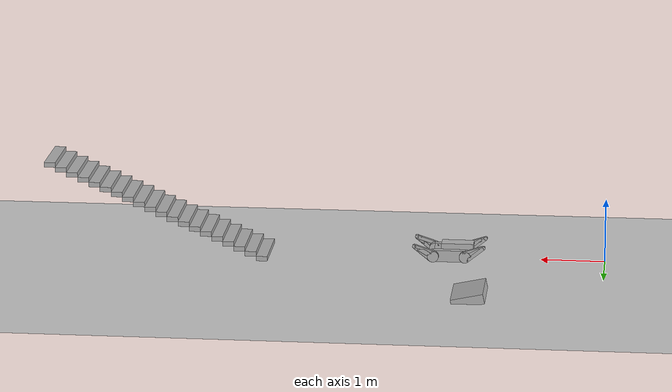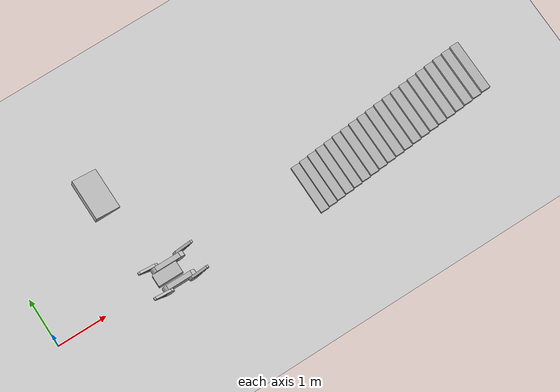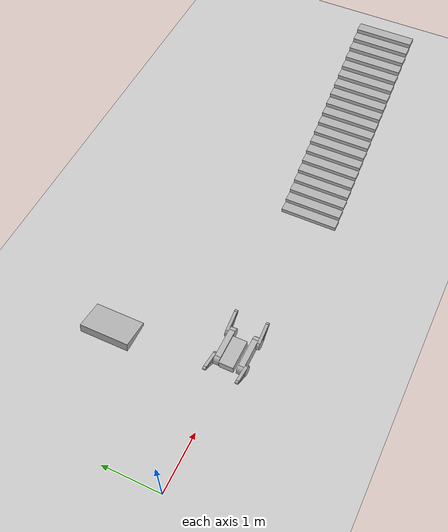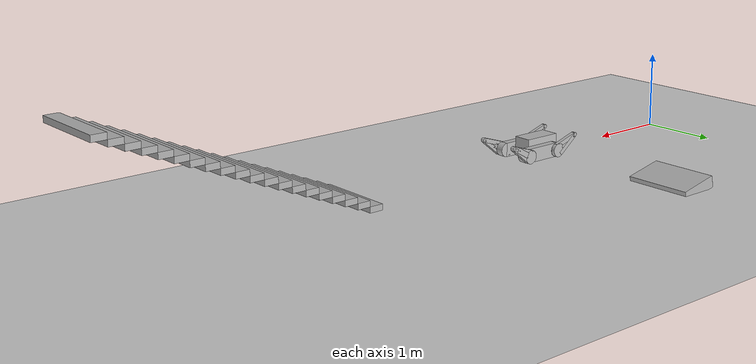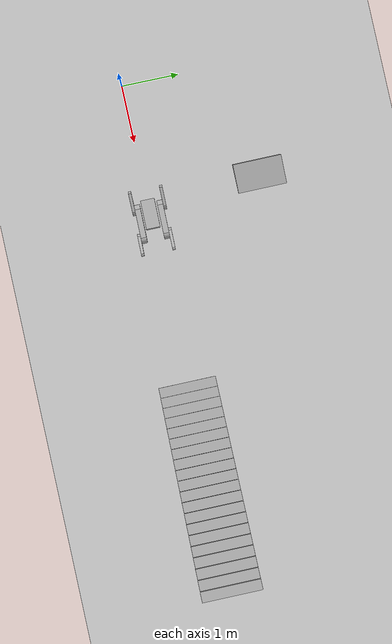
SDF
<sdf version="1.10">
 <world name="default">
  <physics name="4ms" type="ignored">
   <max_step_size>0.0040000000000000001</max_step_size>
   <real_time_factor>1</real_time_factor>
   <real_time_update_rate>1000</real_time_update_rate>
  </physics>
  <plugin name="gz::sim::systems::Physics" filename="gz-sim-physics-system"/>
  <plugin name="gz::sim::systems::UserCommands" filename="gz-sim-user-commands-system"/>
  <plugin name="gz::sim::systems::SceneBroadcaster" filename="gz-sim-scene-broadcaster-system"/>
  <scene>
   <ambient>1 1 1 1</ambient>
   <background>0.800000012 0.800000012 0.800000012 1</background>
   <shadows>true</shadows>
  </scene>
  <gravity>0 0 -9.8000000000000007</gravity>
  <magnetic_field>6.0000000000000002e-06 2.3e-05 -4.1999999999999998e-05</magnetic_field>
  <atmosphere type="adiabatic"/>
  <model name="ground_plane">
   <static>true</static>
   <link name="link">
    <collision name="collision">
     <geometry><plane><normal>0 0 1</normal><size>100 100</size></plane></geometry>
    </collision>
    <visual name="visual">
     <geometry><plane><normal>0 0 1</normal><size>100 100</size></plane></geometry>
     <material>
      <ambient>0.800000012 0.800000012 0.800000012 1</ambient>
      <diffuse>0.800000012 0.800000012 0.800000012 1</diffuse>
      <specular>0.800000012 0.800000012 0.800000012 1</specular>
     </material>
    </visual>
    <inertial>
     <mass>1</mass>
     <inertia><ixx>1</ixx><ixy>0</ixy><ixz>0</ixz><iyy>1</iyy><iyz>0</iyz><izz>1</izz></inertia>
    </inertial>
   </link>
  </model>
  <model name="simple_tracked">
   <pose>2.4212790601763632 0.0088234418596447404 0.071920416213215738 -4.4765656220572496e-08 -1.6720833791462506e-06 -0.0062734254561299134</pose>
   <link name="base_link">
    <inertial>
     <pose>-0.122 0 0.11799999999999999 1.5708 0 0</pose>
     <mass>13.140000000000001</mass>
     <inertia>
      <ixx>0.10019</ixx>
      <ixy>0</ixy>
      <ixz>0</ixz>
      <iyy>0.34504299999999999</iyy>
      <iyz>0</iyz>
      <izz>0.30204399999999998</izz>
     </inertia>
    </inertial>
    <collision name="base_link_collision">
     <pose>-0.122 0 0.11799999999999999 0 0 0</pose>
     <geometry><box><size>0.50017 0.24093000000000001 0.13900000000000001</size></box></geometry>
    </collision>
    <visual name="base_link_visual">
     <pose>-0.122 0 0.11799999999999999 0 0 0</pose>
     <geometry><box><size>0.50017 0.24093000000000001 0.13900000000000001</size></box></geometry>
    </visual>
   </link>
   <link name="left_track">
    <pose>0 0.19850000000000001 -1.3877787807814457e-17 -6.6174449004242214e-24 -3.2182495707141233e-23 -8.6736173798840355e-19</pose>
    <inertial>
     <pose>0 0 0.0141 0 0 0</pose>
     <mass>6.0599999999999996</mass>
     <inertia>
      <ixx>0.0027309999999999999</ixx>
      <ixy>0</ixy>
      <ixz>0</ixz>
      <iyy>0.032554</iyy>
      <iyz>1.5e-05</iyz>
      <izz>0.031391000000000002</izz>
     </inertia>
    </inertial>
    <collision name="left_track_collision">
     <pose>0 0 0.018550000000000001 1.5708 -5.5511151231257827e-17 1.5708</pose>
     <geometry><box><size>0.097280000000000005 0.18093999999999999 0.5</size></box></geometry>
     <surface>
      <friction><ode><mu>0.69999999999999996</mu><mu2>150</mu2><fdir1>0 1 0</fdir1></ode></friction>
     </surface>
    </collision>
    <collision name="left_track_collision_1">
     <pose>0.25 0 0.018550000000000001 1.5708 0 0</pose>
     <geometry>
      <cylinder><length>0.097280000000000005</length><radius>0.090469999999999995</radius></cylinder>
     </geometry>
     <surface>
      <friction><ode><mu>0.69999999999999996</mu><mu2>150</mu2><fdir1>0 1 0</fdir1></ode></friction>
     </surface>
    </collision>
    <collision name="left_track_collision_2">
     <pose>-0.25 0 0.018550000000000001 1.5708 0 0</pose>
     <geometry>
      <cylinder><length>0.097280000000000005</length><radius>0.090469999999999995</radius></cylinder>
     </geometry>
     <surface>
      <friction><ode><mu>0.69999999999999996</mu><mu2>150</mu2><fdir1>0 1 0</fdir1></ode></friction>
     </surface>
    </collision>
    <visual name="left_track_visual">
     <pose>0 0 0.018550000000000001 1.5708 -5.5511151231257827e-17 1.5708</pose>
     <geometry><box><size>0.097280000000000005 0.18093999999999999 0.5</size></box></geometry>
    </visual>
    <visual name="left_track_visual_1">
     <pose>0.25 0 0.018550000000000001 1.5708 0 0</pose>
     <geometry>
      <cylinder><length>0.097280000000000005</length><radius>0.090469999999999995</radius></cylinder>
     </geometry>
    </visual>
    <visual name="left_track_visual_2">
     <pose>-0.25 0 0.018550000000000001 1.5708 0 0</pose>
     <geometry>
      <cylinder><length>0.097280000000000005</length><radius>0.090469999999999995</radius></cylinder>
     </geometry>
    </visual>
   </link>
   <joint name="left_track_j" type="fixed"><child>left_track</child><parent>base_link</parent></joint>
   <link name="right_track">
    <pose>-8.8817841970012523e-16 -0.19850000000000001 -1.3877787807814457e-17 -6.6174449004242214e-24 -3.2182495707141233e-23 -8.6736173798840355e-19</pose>
    <inertial>
     <pose>0 0 0.0141 0 0 0</pose>
     <mass>6.0599999999999996</mass>
     <inertia>
      <ixx>0.0027309999999999999</ixx>
      <ixy>0</ixy>
      <ixz>0</ixz>
      <iyy>0.032554</iyy>
      <iyz>1.5e-05</iyz>
      <izz>0.031391000000000002</izz>
     </inertia>
    </inertial>
    <collision name="right_track_collision">
     <pose>0 0 0.018550000000000001 1.5708 -5.5511151231257827e-17 1.5708</pose>
     <geometry><box><size>0.097280000000000005 0.18093999999999999 0.5</size></box></geometry>
     <surface>
      <friction><ode><mu>0.69999999999999996</mu><mu2>150</mu2><fdir1>0 1 0</fdir1></ode></friction>
     </surface>
    </collision>
    <collision name="right_track_collision_1">
     <pose>0.25 0 0.018550000000000001 1.5708 0 0</pose>
     <geometry>
      <cylinder><length>0.097280000000000005</length><radius>0.090469999999999995</radius></cylinder>
     </geometry>
     <surface>
      <friction><ode><mu>0.69999999999999996</mu><mu2>150</mu2><fdir1>0 1 0</fdir1></ode></friction>
     </surface>
    </collision>
    <collision name="right_track_collision_2">
     <pose>-0.25 0 0.018550000000000001 1.5708 0 0</pose>
     <geometry>
      <cylinder><length>0.097280000000000005</length><radius>0.090469999999999995</radius></cylinder>
     </geometry>
     <surface>
      <friction><ode><mu>0.69999999999999996</mu><mu2>150</mu2><fdir1>0 1 0</fdir1></ode></friction>
     </surface>
    </collision>
    <visual name="right_track_visual">
     <pose>0 0 0.018550000000000001 1.5708 -5.5511151231257827e-17 1.5708</pose>
     <geometry><box><size>0.097280000000000005 0.18093999999999999 0.5</size></box></geometry>
    </visual>
    <visual name="right_track_visual_1">
     <pose>0.25 0 0.018550000000000001 1.5708 0 0</pose>
     <geometry>
      <cylinder><length>0.097280000000000005</length><radius>0.090469999999999995</radius></cylinder>
     </geometry>
    </visual>
    <visual name="right_track_visual_2">
     <pose>-0.25 0 0.018550000000000001 1.5708 0 0</pose>
     <geometry>
      <cylinder><length>0.097280000000000005</length><radius>0.090469999999999995</radius></cylinder>
     </geometry>
    </visual>
   </link>
   <joint name="right_track_j" type="fixed"><child>right_track</child><parent>base_link</parent></joint>
   <link name="front_left_flipper">
    <pose>0.24999994858526753 0.2719999948407883 0.019499993412040811 1.3959020833992615e-08 -0.49651992800560996 1.935706113526475e-07</pose>
    <inertial>
     <pose>0.080000000000000002 0 0 0 0 0</pose>
     <mass>0.75</mass>
     <inertia>
      <ixx>0.0017491</ixx>
      <ixy>2.8512e-07</ixy>
      <ixz>0.0018277</ixz>
      <iyy>0.012277</iyy>
      <iyz>-3.6287999999999998e-07</iyz>
      <izz>0.010940999999999999</izz>
     </inertia>
    </inertial>
    <collision name="front_left_flipper_collision_large_wheel_collision">
     <pose>0 0 0 1.5708 0 0</pose>
     <geometry><cylinder><length>0.04981</length><radius>0.088999999999999996</radius></cylinder></geometry>
     <surface>
      <friction><ode><mu>0.69999999999999996</mu><mu2>150</mu2><fdir1>0 1 0</fdir1></ode></friction>
     </surface>
     <max_contacts>20</max_contacts>
    </collision>
    <collision name="front_left_flipper_collision_small_wheel_collision_1">
     <pose>0.33000000000000002 0 0 1.5708 0 0</pose>
     <geometry><cylinder><length>0.04981</length><radius>0.029000000000000001</radius></cylinder></geometry>
     <surface>
      <friction><ode><mu>0.69999999999999996</mu><mu2>150</mu2><fdir1>0 1 0</fdir1></ode></friction>
     </surface>
     <max_contacts>20</max_contacts>
    </collision>
    <collision name="front_left_flipper_collision_top_bar_collision_2">
     <pose>0.16500000000000001 0 0.032500000000000001 0 0.18416199999999999 0</pose>
     <geometry><box><size>0.33000000000000002 0.04981 0.055</size></box></geometry>
     <surface>
      <friction><ode><mu>0.69999999999999996</mu><mu2>150</mu2><fdir1>0 1 0</fdir1></ode></friction>
     </surface>
     <max_contacts>20</max_contacts>
    </collision>
    <collision name="front_left_flipper_collision_bottom_bar_collision_3">
     <pose>0.16500000000000001 0 -0.032500000000000001 0 -0.18416199999999999 0</pose>
     <geometry><box><size>0.33000000000000002 0.04981 0.055</size></box></geometry>
     <surface>
      <friction><ode><mu>0.69999999999999996</mu><mu2>150</mu2><fdir1>0 1 0</fdir1></ode></friction>
     </surface>
     <max_contacts>20</max_contacts>
    </collision>
    <collision name="front_left_flipper_collision_middle_bar_collision_4">
     <pose>0.16600000000000001 0 0.0040000000000000001 0 -0.02 0</pose>
     <geometry><box><size>0.20000000000000001 0.04981 0.070000000000000007</size></box></geometry>
     <surface>
      <friction><ode><mu>0.69999999999999996</mu><mu2>150</mu2><fdir1>0 1 0</fdir1></ode></friction>
     </surface>
     <max_contacts>20</max_contacts>
    </collision>
    <visual name="front_left_flipper_visual_large_wheel_visual">
     <pose>0 0 0 1.5708 0 0</pose>
     <geometry><cylinder><length>0.04981</length><radius>0.088999999999999996</radius></cylinder></geometry>
    </visual>
    <visual name="front_left_flipper_visual_small_wheel_visual_1">
     <pose>0.33000000000000002 0 0 1.5708 0 0</pose>
     <geometry><cylinder><length>0.04981</length><radius>0.029000000000000001</radius></cylinder></geometry>
    </visual>
    <visual name="front_left_flipper_visual_top_bar_visual_2">
     <pose>0.16500000000000001 0 0.032500000000000001 0 0.18416199999999999 0</pose>
     <geometry><box><size>0.33000000000000002 0.04981 0.055</size></box></geometry>
    </visual>
    <visual name="front_left_flipper_visual_bottom_bar_visual_3">
     <pose>0.16500000000000001 0 -0.032500000000000001 0 -0.18416199999999999 0</pose>
     <geometry><box><size>0.33000000000000002 0.04981 0.055</size></box></geometry>
    </visual>
    <visual name="front_left_flipper_visual_middle_bar_visual_4">
     <pose>0.16600000000000001 0 0.0040000000000000001 0 -0.02 0</pose>
     <geometry><box><size>0.20000000000000001 0.04981 0.070000000000000007</size></box></geometry>
    </visual>
    <self_collide>true</self_collide>
   </link>
   <joint name="front_left_flipper_j" type="revolute">
    <child>front_left_flipper</child>
    <parent>left_track</parent>
    <axis>
     <xyz>0 1 0</xyz>
     <limit>
      <lower>0</lower>
      <upper>0</upper>
      <effort>inf</effort>
      <velocity>inf</velocity>
      <stiffness>100000000</stiffness>
      <dissipation>1</dissipation>
     </limit>
     <dynamics>
      <spring_reference>0</spring_reference>
      <spring_stiffness>0</spring_stiffness>
      <damping>0</damping>
      <friction>0</friction>
     </dynamics>
    </axis>
    <physics>
     <ode>
      <implicit_spring_damper>true</implicit_spring_damper>
      <cfm_damping>true</cfm_damping>
      <limit><cfm>0</cfm><erp>0.20000000000000001</erp></limit>
     </ode>
    </physics>
    <pose>0 5.5511199999999995e-17 -4.1633400000000002e-17 0 0 0</pose>
   </joint>
   <link name="rear_left_flipper">
    <pose>-0.24999999999999956 0.27199999999999996 0.019500000000000045 3.1415899999999999 -0.499999999999307 3.1415899999999999</pose>
    <inertial>
     <pose>0.080000000000000002 0 0 0 0 0</pose>
     <mass>0.75</mass>
     <inertia>
      <ixx>0.0017491</ixx>
      <ixy>2.8512e-07</ixy>
      <ixz>0.0018277</ixz>
      <iyy>0.012277</iyy>
      <iyz>-3.6287999999999998e-07</iyz>
      <izz>0.010940999999999999</izz>
     </inertia>
    </inertial>
    <collision name="rear_left_flipper_collision_large_wheel_collision">
     <pose>0 0 0 1.5708 0 0</pose>
     <geometry><cylinder><length>0.04981</length><radius>0.088999999999999996</radius></cylinder></geometry>
     <surface>
      <friction><ode><mu>0.69999999999999996</mu><mu2>150</mu2><fdir1>0 1 0</fdir1></ode></friction>
     </surface>
     <max_contacts>20</max_contacts>
    </collision>
    <collision name="rear_left_flipper_collision_small_wheel_collision_1">
     <pose>0.33000000000000002 0 0 1.5708 0 0</pose>
     <geometry><cylinder><length>0.04981</length><radius>0.029000000000000001</radius></cylinder></geometry>
     <surface>
      <friction><ode><mu>0.69999999999999996</mu><mu2>150</mu2><fdir1>0 1 0</fdir1></ode></friction>
     </surface>
     <max_contacts>20</max_contacts>
    </collision>
    <collision name="rear_left_flipper_collision_top_bar_collision_2">
     <pose>0.16500000000000001 0 0.032500000000000001 0 0.18416199999999999 0</pose>
     <geometry><box><size>0.33000000000000002 0.04981 0.055</size></box></geometry>
     <surface>
      <friction><ode><mu>0.69999999999999996</mu><mu2>150</mu2><fdir1>0 1 0</fdir1></ode></friction>
     </surface>
     <max_contacts>20</max_contacts>
    </collision>
    <collision name="rear_left_flipper_collision_bottom_bar_collision_3">
     <pose>0.16500000000000001 0 -0.032500000000000001 0 -0.18416199999999999 0</pose>
     <geometry><box><size>0.33000000000000002 0.04981 0.055</size></box></geometry>
     <surface>
      <friction><ode><mu>0.69999999999999996</mu><mu2>150</mu2><fdir1>0 1 0</fdir1></ode></friction>
     </surface>
     <max_contacts>20</max_contacts>
    </collision>
    <collision name="rear_left_flipper_collision_middle_bar_collision_4">
     <pose>0.16600000000000001 0 0.0040000000000000001 0 -0.02 0</pose>
     <geometry><box><size>0.20000000000000001 0.04981 0.070000000000000007</size></box></geometry>
     <surface>
      <friction><ode><mu>0.69999999999999996</mu><mu2>150</mu2><fdir1>0 1 0</fdir1></ode></friction>
     </surface>
     <max_contacts>20</max_contacts>
    </collision>
    <visual name="rear_left_flipper_visual_large_wheel_visual">
     <pose>0 0 0 1.5708 0 0</pose>
     <geometry><cylinder><length>0.04981</length><radius>0.088999999999999996</radius></cylinder></geometry>
    </visual>
    <visual name="rear_left_flipper_visual_small_wheel_visual_1">
     <pose>0.33000000000000002 0 0 1.5708 0 0</pose>
     <geometry><cylinder><length>0.04981</length><radius>0.029000000000000001</radius></cylinder></geometry>
    </visual>
    <visual name="rear_left_flipper_visual_top_bar_visual_2">
     <pose>0.16500000000000001 0 0.032500000000000001 0 0.18416199999999999 0</pose>
     <geometry><box><size>0.33000000000000002 0.04981 0.055</size></box></geometry>
    </visual>
    <visual name="rear_left_flipper_visual_bottom_bar_visual_3">
     <pose>0.16500000000000001 0 -0.032500000000000001 0 -0.18416199999999999 0</pose>
     <geometry><box><size>0.33000000000000002 0.04981 0.055</size></box></geometry>
    </visual>
    <visual name="rear_left_flipper_visual_middle_bar_visual_4">
     <pose>0.16600000000000001 0 0.0040000000000000001 0 -0.02 0</pose>
     <geometry><box><size>0.20000000000000001 0.04981 0.070000000000000007</size></box></geometry>
    </visual>
    <self_collide>true</self_collide>
   </link>
   <joint name="rear_left_flipper_j" type="revolute">
    <child>rear_left_flipper</child>
    <parent>left_track</parent>
    <axis>
     <xyz>2.3287441290566332e-06 0.99999999998958267 3.9257885092516563e-06</xyz>
     <limit>
      <lower>0</lower>
      <upper>0</upper>
      <effort>inf</effort>
      <velocity>inf</velocity>
      <stiffness>100000000</stiffness>
      <dissipation>1</dissipation>
     </limit>
     <dynamics>
      <spring_reference>0</spring_reference>
      <spring_stiffness>0</spring_stiffness>
      <damping>0</damping>
      <friction>0</friction>
     </dynamics>
    </axis>
    <physics>
     <ode>
      <implicit_spring_damper>true</implicit_spring_damper>
      <cfm_damping>true</cfm_damping>
      <limit><cfm>0</cfm><erp>0.20000000000000001</erp></limit>
     </ode>
    </physics>
    <pose>1.6653299999999999e-16 0 1.3877799999999999e-17 3.2731500000000002e-40 6.1828099999999997e-18 1.05879e-22</pose>
   </joint>
   <link name="front_right_flipper">
    <pose>0.24999999999999911 -0.27199999999999996 0.019500000000000017 3.1415899999999999 0.49999999999963862 3.1415899999999999</pose>
    <inertial>
     <pose>-0.080000000000000002 0 0 0 0 0</pose>
     <mass>0.75</mass>
     <inertia>
      <ixx>0.0017491</ixx>
      <ixy>2.8512e-07</ixy>
      <ixz>0.0018277</ixz>
      <iyy>0.012277</iyy>
      <iyz>-3.6287999999999998e-07</iyz>
      <izz>0.010940999999999999</izz>
     </inertia>
    </inertial>
    <collision name="front_right_flipper_collision_large_wheel_collision">
     <pose>0 0 0 1.5708 0 0</pose>
     <geometry><cylinder><length>0.04981</length><radius>0.088999999999999996</radius></cylinder></geometry>
     <surface>
      <friction><ode><mu>0.69999999999999996</mu><mu2>150</mu2><fdir1>0 1 0</fdir1></ode></friction>
     </surface>
     <max_contacts>20</max_contacts>
    </collision>
    <collision name="front_right_flipper_collision_small_wheel_collision_1">
     <pose>-0.33000000000000002 0 0 1.5708 0 0</pose>
     <geometry><cylinder><length>0.04981</length><radius>0.029000000000000001</radius></cylinder></geometry>
     <surface>
      <friction><ode><mu>0.69999999999999996</mu><mu2>150</mu2><fdir1>0 1 0</fdir1></ode></friction>
     </surface>
     <max_contacts>20</max_contacts>
    </collision>
    <collision name="front_right_flipper_collision_top_bar_collision_2">
     <pose>-0.16500000000000001 0 0.032500000000000001 0 0.18416199999999999 -3.1415899999999999</pose>
     <geometry><box><size>0.33000000000000002 0.04981 0.055</size></box></geometry>
     <surface>
      <friction><ode><mu>0.69999999999999996</mu><mu2>150</mu2><fdir1>0 1 0</fdir1></ode></friction>
     </surface>
     <max_contacts>20</max_contacts>
    </collision>
    <collision name="front_right_flipper_collision_bottom_bar_collision_3">
     <pose>-0.16500000000000001 0 -0.032500000000000001 0 -0.18416199999999999 -3.1415899999999999</pose>
     <geometry><box><size>0.33000000000000002 0.04981 0.055</size></box></geometry>
     <surface>
      <friction><ode><mu>0.69999999999999996</mu><mu2>150</mu2><fdir1>0 1 0</fdir1></ode></friction>
     </surface>
     <max_contacts>20</max_contacts>
    </collision>
    <collision name="front_right_flipper_collision_middle_bar_collision_4">
     <pose>-0.16600000000000001 0 0.0040000000000000001 -3.3093843050108442e-24 -0.020000000000000004 -3.1415899999999999</pose>
     <geometry><box><size>0.20000000000000001 0.04981 0.070000000000000007</size></box></geometry>
     <surface>
      <friction><ode><mu>0.69999999999999996</mu><mu2>150</mu2><fdir1>0 1 0</fdir1></ode></friction>
     </surface>
     <max_contacts>20</max_contacts>
    </collision>
    <visual name="front_right_flipper_visual_large_wheel_visual">
     <pose>0 0 0 1.5708 0 0</pose>
     <geometry><cylinder><length>0.04981</length><radius>0.088999999999999996</radius></cylinder></geometry>
    </visual>
    <visual name="front_right_flipper_visual_small_wheel_visual_1">
     <pose>-0.33000000000000002 0 0 1.5708 0 0</pose>
     <geometry><cylinder><length>0.04981</length><radius>0.029000000000000001</radius></cylinder></geometry>
    </visual>
    <visual name="front_right_flipper_visual_top_bar_visual_2">
     <pose>-0.16500000000000001 0 0.032500000000000001 0 0.18416199999999999 -3.1415899999999999</pose>
     <geometry><box><size>0.33000000000000002 0.04981 0.055</size></box></geometry>
    </visual>
    <visual name="front_right_flipper_visual_bottom_bar_visual_3">
     <pose>-0.16500000000000001 0 -0.032500000000000001 0 -0.18416199999999999 -3.1415899999999999</pose>
     <geometry><box><size>0.33000000000000002 0.04981 0.055</size></box></geometry>
    </visual>
    <visual name="front_right_flipper_visual_middle_bar_visual_4">
     <pose>-0.16600000000000001 0 0.0040000000000000001 -3.3093843050108442e-24 -0.020000000000000004 -3.1415899999999999</pose>
     <geometry><box><size>0.20000000000000001 0.04981 0.070000000000000007</size></box></geometry>
    </visual>
    <self_collide>true</self_collide>
   </link>
   <joint name="front_right_flipper_j" type="revolute">
    <child>front_right_flipper</child>
    <parent>right_track</parent>
    <axis>
     <xyz>2.3287441290566328e-06 0.99999999999633438 1.381391077435118e-06</xyz>
     <limit>
      <lower>0</lower>
      <upper>0</upper>
      <effort>inf</effort>
      <velocity>inf</velocity>
      <stiffness>100000000</stiffness>
      <dissipation>1</dissipation>
     </limit>
     <dynamics>
      <spring_reference>0</spring_reference>
      <spring_stiffness>0</spring_stiffness>
      <damping>0</damping>
      <friction>0</friction>
     </dynamics>
    </axis>
    <physics>
     <ode>
      <implicit_spring_damper>true</implicit_spring_damper>
      <cfm_damping>true</cfm_damping>
      <limit><cfm>0</cfm><erp>0.20000000000000001</erp></limit>
     </ode>
    </physics>
    <pose>-1.38778e-16 -5.5511199999999995e-17 2.7755599999999997e-17 2.11758e-22 -1.09517e-17 -1.15955e-39</pose>
   </joint>
   <link name="rear_right_flipper">
    <pose>-0.24999994249490598 -0.272000105269326 0.019499998205294661 1.3956252588314928e-08 0.49615370147433774 2.0686407642123534e-07</pose>
    <inertial>
     <pose>-0.080000000000000002 0 0 0 0 0</pose>
     <mass>0.75</mass>
     <inertia>
      <ixx>0.0017491</ixx>
      <ixy>2.8512e-07</ixy>
      <ixz>0.0018277</ixz>
      <iyy>0.012277</iyy>
      <iyz>-3.6287999999999998e-07</iyz>
      <izz>0.010940999999999999</izz>
     </inertia>
    </inertial>
    <collision name="rear_right_flipper_collision_large_wheel_collision">
     <pose>0 0 0 1.5708 0 0</pose>
     <geometry><cylinder><length>0.04981</length><radius>0.088999999999999996</radius></cylinder></geometry>
     <surface>
      <friction><ode><mu>0.69999999999999996</mu><mu2>150</mu2><fdir1>0 1 0</fdir1></ode></friction>
     </surface>
     <max_contacts>20</max_contacts>
    </collision>
    <collision name="rear_right_flipper_collision_small_wheel_collision_1">
     <pose>-0.33000000000000002 0 0 1.5708 0 0</pose>
     <geometry><cylinder><length>0.04981</length><radius>0.029000000000000001</radius></cylinder></geometry>
     <surface>
      <friction><ode><mu>0.69999999999999996</mu><mu2>150</mu2><fdir1>0 1 0</fdir1></ode></friction>
     </surface>
     <max_contacts>20</max_contacts>
    </collision>
    <collision name="rear_right_flipper_collision_top_bar_collision_2">
     <pose>-0.16500000000000001 0 0.032500000000000001 0 0.18416199999999999 -3.1415899999999999</pose>
     <geometry><box><size>0.33000000000000002 0.04981 0.055</size></box></geometry>
     <surface>
      <friction><ode><mu>0.69999999999999996</mu><mu2>150</mu2><fdir1>0 1 0</fdir1></ode></friction>
     </surface>
     <max_contacts>20</max_contacts>
    </collision>
    <collision name="rear_right_flipper_collision_bottom_bar_collision_3">
     <pose>-0.16500000000000001 0 -0.032500000000000001 0 -0.18416199999999999 -3.1415899999999999</pose>
     <geometry><box><size>0.33000000000000002 0.04981 0.055</size></box></geometry>
     <surface>
      <friction><ode><mu>0.69999999999999996</mu><mu2>150</mu2><fdir1>0 1 0</fdir1></ode></friction>
     </surface>
     <max_contacts>20</max_contacts>
    </collision>
    <collision name="rear_right_flipper_collision_middle_bar_collision_4">
     <pose>-0.16600000000000001 0 0.0040000000000000001 -3.3093843050108442e-24 -0.020000000000000004 -3.1415899999999999</pose>
     <geometry><box><size>0.20000000000000001 0.04981 0.070000000000000007</size></box></geometry>
     <surface>
      <friction><ode><mu>0.69999999999999996</mu><mu2>150</mu2><fdir1>0 1 0</fdir1></ode></friction>
     </surface>
     <max_contacts>20</max_contacts>
    </collision>
    <visual name="rear_right_flipper_visual_large_wheel_visual">
     <pose>0 0 0 1.5708 0 0</pose>
     <geometry><cylinder><length>0.04981</length><radius>0.088999999999999996</radius></cylinder></geometry>
    </visual>
    <visual name="rear_right_flipper_visual_small_wheel_visual_1">
     <pose>-0.33000000000000002 0 0 1.5708 0 0</pose>
     <geometry><cylinder><length>0.04981</length><radius>0.029000000000000001</radius></cylinder></geometry>
    </visual>
    <visual name="rear_right_flipper_visual_top_bar_visual_2">
     <pose>-0.16500000000000001 0 0.032500000000000001 0 0.18416199999999999 -3.1415899999999999</pose>
     <geometry><box><size>0.33000000000000002 0.04981 0.055</size></box></geometry>
    </visual>
    <visual name="rear_right_flipper_visual_bottom_bar_visual_3">
     <pose>-0.16500000000000001 0 -0.032500000000000001 0 -0.18416199999999999 -3.1415899999999999</pose>
     <geometry><box><size>0.33000000000000002 0.04981 0.055</size></box></geometry>
    </visual>
    <visual name="rear_right_flipper_visual_middle_bar_visual_4">
     <pose>-0.16600000000000001 0 0.0040000000000000001 -3.3093843050108442e-24 -0.020000000000000004 -3.1415899999999999</pose>
     <geometry><box><size>0.20000000000000001 0.04981 0.070000000000000007</size></box></geometry>
    </visual>
    <self_collide>true</self_collide>
   </link>
   <joint name="rear_right_flipper_j" type="revolute">
    <child>rear_right_flipper</child>
    <parent>right_track</parent>
    <axis>
     <xyz>0 1 0</xyz>
     <limit>
      <lower>0</lower>
      <upper>0</upper>
      <effort>inf</effort>
      <velocity>inf</velocity>
      <stiffness>100000000</stiffness>
      <dissipation>1</dissipation>
     </limit>
     <dynamics>
      <spring_reference>0</spring_reference>
      <spring_stiffness>0</spring_stiffness>
      <damping>0</damping>
      <friction>0</friction>
     </dynamics>
    </axis>
    <physics>
     <ode>
      <implicit_spring_damper>true</implicit_spring_damper>
      <cfm_damping>true</cfm_damping>
      <limit><cfm>0</cfm><erp>0.20000000000000001</erp></limit>
     </ode>
    </physics>
    <pose>0 -5.5511199999999995e-17 -4.1633400000000002e-17 0 0 0</pose>
   </joint>
   <plugin name="gz::sim::systems::TrackedVehicle" filename="gz-sim-tracked-vehicle-system">
    <left_track><link>left_track</link></left_track>
    <left_track><link>front_left_flipper</link></left_track>
    <left_track><link>rear_left_flipper</link></left_track>
    <right_track><link>right_track</link></right_track>
    <right_track><link>front_right_flipper</link></right_track>
    <right_track><link>rear_right_flipper</link></right_track>
    <tracks_separation>0.4</tracks_separation>
    <tracks_height>0.18094</tracks_height>
    <steering_efficiency>0.7</steering_efficiency>
   </plugin>
   <plugin name="gz::sim::systems::TrackController" filename="gz-sim-track-controller-system">
    <link>left_track</link>
    <min_velocity>-1.0</min_velocity>
    <max_velocity>3.0</max_velocity>
   </plugin>
   <plugin name="gz::sim::systems::TrackController" filename="gz-sim-track-controller-system">
    <link>right_track</link>
    <min_velocity>-1.0</min_velocity>
    <max_velocity>3.0</max_velocity>
   </plugin>
   <plugin name="gz::sim::systems::TrackController" filename="gz-sim-track-controller-system">
    <link>front_left_flipper</link>
    <min_velocity>-1.0</min_velocity>
    <max_velocity>3.0</max_velocity>
   </plugin>
   <plugin name="gz::sim::systems::TrackController" filename="gz-sim-track-controller-system">
    <link>rear_left_flipper</link>
    <min_velocity>-1.0</min_velocity>
    <max_velocity>3.0</max_velocity>
   </plugin>
   <plugin name="gz::sim::systems::TrackController" filename="gz-sim-track-controller-system">
    <link>front_right_flipper</link>
    <min_velocity>-1.0</min_velocity>
    <max_velocity>3.0</max_velocity>
   </plugin>
   <plugin name="gz::sim::systems::TrackController" filename="gz-sim-track-controller-system">
    <link>rear_right_flipper</link>
    <min_velocity>-1.0</min_velocity>
    <max_velocity>3.0</max_velocity>
   </plugin>
   <static>false</static>
  </model>
  <model name="stairs_very_simple">
   <pose>7 0 0 0 0 1.5708000000000006</pose>
   <link name="Stairs_3">
    <visual name="Stairs_3_Visual_0">
     <pose>0 1.6625000000000001 0.037499999999999999 0 0 0</pose>
     <geometry><box><size>1 0.17499999999999999 0.074999999999999997</size></box></geometry>
     <material><ambient>.6 .6 .6  1.0</ambient><diffuse>.7 .7 .7  1.0</diffuse></material>
     <meta><layer>0</layer></meta>
    </visual>
    <collision name="Stairs_3_Collision_0">
     <geometry><box><size>1 0.17499999999999999 0.074999999999999997</size></box></geometry>
     <pose>0 1.6625000000000001 0.037499999999999999 0 0 0</pose>
    </collision>
    <visual name="Stairs_3_Visual_1">
     <pose>0 1.4875 0.1125 0 0 0</pose>
     <geometry><box><size>1 0.17499999999999999 0.074999999999999997</size></box></geometry>
     <material><ambient>.6 .6 .6  1.0</ambient><diffuse>.7 .7 .7  1.0</diffuse></material>
     <meta><layer>0</layer></meta>
    </visual>
    <collision name="Stairs_3_Collision_1">
     <geometry><box><size>1 0.17499999999999999 0.074999999999999997</size></box></geometry>
     <pose>0 1.4875 0.1125 0 0 0</pose>
    </collision>
    <visual name="Stairs_3_Visual_2">
     <pose>0 1.3125 0.1875 0 0 0</pose>
     <geometry><box><size>1 0.17499999999999999 0.074999999999999997</size></box></geometry>
     <material><ambient>.6 .6 .6  1.0</ambient><diffuse>.7 .7 .7  1.0</diffuse></material>
     <meta><layer>0</layer></meta>
    </visual>
    <collision name="Stairs_3_Collision_2">
     <geometry><box><size>1 0.17499999999999999 0.074999999999999997</size></box></geometry>
     <pose>0 1.3125 0.1875 0 0 0</pose>
    </collision>
    <visual name="Stairs_3_Visual_3">
     <pose>0 1.1375 0.26250000000000001 0 0 0</pose>
     <geometry><box><size>1 0.17499999999999999 0.074999999999999997</size></box></geometry>
     <material><ambient>.6 .6 .6  1.0</ambient><diffuse>.7 .7 .7  1.0</diffuse></material>
     <meta><layer>0</layer></meta>
    </visual>
    <collision name="Stairs_3_Collision_3">
     <geometry><box><size>1 0.17499999999999999 0.074999999999999997</size></box></geometry>
     <pose>0 1.1375 0.26250000000000001 0 0 0</pose>
    </collision>
    <visual name="Stairs_3_Visual_4">
     <pose>0 0.96250000000000002 0.33750000000000002 0 0 0</pose>
     <geometry><box><size>1 0.17499999999999999 0.074999999999999997</size></box></geometry>
     <material><ambient>.6 .6 .6  1.0</ambient><diffuse>.7 .7 .7  1.0</diffuse></material>
     <meta><layer>0</layer></meta>
    </visual>
    <collision name="Stairs_3_Collision_4">
     <geometry><box><size>1 0.17499999999999999 0.074999999999999997</size></box></geometry>
     <pose>0 0.96250000000000002 0.33750000000000002 0 0 0</pose>
    </collision>
    <visual name="Stairs_3_Visual_5">
     <pose>0 0.78749999999999998 0.41249999999999998 0 0 0</pose>
     <geometry><box><size>1 0.17499999999999999 0.074999999999999997</size></box></geometry>
     <material><ambient>.6 .6 .6  1.0</ambient><diffuse>.7 .7 .7  1.0</diffuse></material>
     <meta><layer>0</layer></meta>
    </visual>
    <collision name="Stairs_3_Collision_5">
     <geometry><box><size>1 0.17499999999999999 0.074999999999999997</size></box></geometry>
     <pose>0 0.78749999999999998 0.41249999999999998 0 0 0</pose>
    </collision>
    <visual name="Stairs_3_Visual_6">
     <pose>0 0.61250000000000004 0.48749999999999999 0 0 0</pose>
     <geometry><box><size>1 0.17499999999999999 0.074999999999999997</size></box></geometry>
     <material><ambient>.6 .6 .6  1.0</ambient><diffuse>.7 .7 .7  1.0</diffuse></material>
     <meta><layer>0</layer></meta>
    </visual>
    <collision name="Stairs_3_Collision_6">
     <geometry><box><size>1 0.17499999999999999 0.074999999999999997</size></box></geometry>
     <pose>0 0.61250000000000004 0.48749999999999999 0 0 0</pose>
    </collision>
    <visual name="Stairs_3_Visual_7">
     <pose>0 0.4375 0.5625 0 0 0</pose>
     <geometry><box><size>1 0.17499999999999999 0.074999999999999997</size></box></geometry>
     <material><ambient>.6 .6 .6  1.0</ambient><diffuse>.7 .7 .7  1.0</diffuse></material>
     <meta><layer>0</layer></meta>
    </visual>
    <collision name="Stairs_3_Collision_7">
     <geometry><box><size>1 0.17499999999999999 0.074999999999999997</size></box></geometry>
     <pose>0 0.4375 0.5625 0 0 0</pose>
    </collision>
    <visual name="Stairs_3_Visual_8">
     <pose>0 0.26250000000000001 0.63749999999999996 0 0 0</pose>
     <geometry><box><size>1 0.17499999999999999 0.074999999999999997</size></box></geometry>
     <material><ambient>.6 .6 .6  1.0</ambient><diffuse>.7 .7 .7  1.0</diffuse></material>
     <meta><layer>0</layer></meta>
    </visual>
    <collision name="Stairs_3_Collision_8">
     <geometry><box><size>1 0.17499999999999999 0.074999999999999997</size></box></geometry>
     <pose>0 0.26250000000000001 0.63749999999999996 0 0 0</pose>
    </collision>
    <visual name="Stairs_3_Visual_9">
     <pose>0 0.087499999999999994 0.71250000000000002 0 0 0</pose>
     <geometry><box><size>1 0.17499999999999999 0.074999999999999997</size></box></geometry>
     <material><ambient>.6 .6 .6  1.0</ambient><diffuse>.7 .7 .7  1.0</diffuse></material>
     <meta><layer>0</layer></meta>
    </visual>
    <collision name="Stairs_3_Collision_9">
     <geometry><box><size>1 0.17499999999999999 0.074999999999999997</size></box></geometry>
     <pose>0 0.087499999999999994 0.71250000000000002 0 0 0</pose>
    </collision>
    <visual name="Stairs_3_Visual_10">
     <pose>0 -0.087499999999999994 0.78749999999999998 0 0 0</pose>
     <geometry><box><size>1 0.17499999999999999 0.074999999999999997</size></box></geometry>
     <material><ambient>.6 .6 .6  1.0</ambient><diffuse>.7 .7 .7  1.0</diffuse></material>
     <meta><layer>0</layer></meta>
    </visual>
    <collision name="Stairs_3_Collision_10">
     <geometry><box><size>1 0.17499999999999999 0.074999999999999997</size></box></geometry>
     <pose>0 -0.087499999999999994 0.78749999999999998 0 0 0</pose>
    </collision>
    <visual name="Stairs_3_Visual_11">
     <pose>0 -0.26250000000000001 0.86250000000000004 0 0 0</pose>
     <geometry><box><size>1 0.17499999999999999 0.074999999999999997</size></box></geometry>
     <material><ambient>.6 .6 .6  1.0</ambient><diffuse>.7 .7 .7  1.0</diffuse></material>
     <meta><layer>0</layer></meta>
    </visual>
    <collision name="Stairs_3_Collision_11">
     <geometry><box><size>1 0.17499999999999999 0.074999999999999997</size></box></geometry>
     <pose>0 -0.26250000000000001 0.86250000000000004 0 0 0</pose>
    </collision>
    <visual name="Stairs_3_Visual_12">
     <pose>0 -0.4375 0.9375 0 0 0</pose>
     <geometry><box><size>1 0.17499999999999999 0.074999999999999997</size></box></geometry>
     <material><ambient>.6 .6 .6  1.0</ambient><diffuse>.7 .7 .7  1.0</diffuse></material>
     <meta><layer>0</layer></meta>
    </visual>
    <collision name="Stairs_3_Collision_12">
     <geometry><box><size>1 0.17499999999999999 0.074999999999999997</size></box></geometry>
     <pose>0 -0.4375 0.9375 0 0 0</pose>
    </collision>
    <visual name="Stairs_3_Visual_13">
     <pose>0 -0.61250000000000004 1.0125 0 0 0</pose>
     <geometry><box><size>1 0.17499999999999999 0.074999999999999997</size></box></geometry>
     <material><ambient>.6 .6 .6  1.0</ambient><diffuse>.7 .7 .7  1.0</diffuse></material>
     <meta><layer>0</layer></meta>
    </visual>
    <collision name="Stairs_3_Collision_13">
     <geometry><box><size>1 0.17499999999999999 0.074999999999999997</size></box></geometry>
     <pose>0 -0.61250000000000004 1.0125 0 0 0</pose>
    </collision>
    <visual name="Stairs_3_Visual_14">
     <pose>0 -0.78749999999999998 1.0874999999999999 0 0 0</pose>
     <geometry><box><size>1 0.17499999999999999 0.074999999999999997</size></box></geometry>
     <material><ambient>.6 .6 .6  1.0</ambient><diffuse>.7 .7 .7  1.0</diffuse></material>
     <meta><layer>0</layer></meta>
    </visual>
    <collision name="Stairs_3_Collision_14">
     <geometry><box><size>1 0.17499999999999999 0.074999999999999997</size></box></geometry>
     <pose>0 -0.78749999999999998 1.0874999999999999 0 0 0</pose>
    </collision>
    <visual name="Stairs_3_Visual_15">
     <pose>0 -0.96250000000000002 1.1625000000000001 0 0 0</pose>
     <geometry><box><size>1 0.17499999999999999 0.074999999999999997</size></box></geometry>
     <material><ambient>.6 .6 .6  1.0</ambient><diffuse>.7 .7 .7  1.0</diffuse></material>
     <meta><layer>0</layer></meta>
    </visual>
    <collision name="Stairs_3_Collision_15">
     <geometry><box><size>1 0.17499999999999999 0.074999999999999997</size></box></geometry>
     <pose>0 -0.96250000000000002 1.1625000000000001 0 0 0</pose>
    </collision>
    <visual name="Stairs_3_Visual_16">
     <pose>0 -1.1375 1.2375 0 0 0</pose>
     <geometry><box><size>1 0.17499999999999999 0.074999999999999997</size></box></geometry>
     <material><ambient>.6 .6 .6  1.0</ambient><diffuse>.7 .7 .7  1.0</diffuse></material>
     <meta><layer>0</layer></meta>
    </visual>
    <collision name="Stairs_3_Collision_16">
     <geometry><box><size>1 0.17499999999999999 0.074999999999999997</size></box></geometry>
     <pose>0 -1.1375 1.2375 0 0 0</pose>
    </collision>
    <visual name="Stairs_3_Visual_17">
     <pose>0 -1.3125 1.3125 0 0 0</pose>
     <geometry><box><size>1 0.17499999999999999 0.074999999999999997</size></box></geometry>
     <material><ambient>.6 .6 .6  1.0</ambient><diffuse>.7 .7 .7  1.0</diffuse></material>
     <meta><layer>0</layer></meta>
    </visual>
    <collision name="Stairs_3_Collision_17">
     <geometry><box><size>1 0.17499999999999999 0.074999999999999997</size></box></geometry>
     <pose>0 -1.3125 1.3125 0 0 0</pose>
    </collision>
    <visual name="Stairs_3_Visual_18">
     <pose>0 -1.4875 1.3875 0 0 0</pose>
     <geometry><box><size>1 0.17499999999999999 0.074999999999999997</size></box></geometry>
     <material><ambient>.6 .6 .6  1.0</ambient><diffuse>.7 .7 .7  1.0</diffuse></material>
     <meta><layer>0</layer></meta>
    </visual>
    <collision name="Stairs_3_Collision_18">
     <geometry><box><size>1 0.17499999999999999 0.074999999999999997</size></box></geometry>
     <pose>0 -1.4875 1.3875 0 0 0</pose>
    </collision>
    <visual name="Stairs_3_Visual_19">
     <pose>0 -1.6625000000000001 1.4624999999999999 0 0 0</pose>
     <geometry><box><size>1 0.17499999999999999 0.074999999999999997</size></box></geometry>
     <material><ambient>.6 .6 .6  1.0</ambient><diffuse>.7 .7 .7  1.0</diffuse></material>
     <meta><layer>0</layer></meta>
    </visual>
    <collision name="Stairs_3_Collision_19">
     <geometry><box><size>1 0.17499999999999999 0.074999999999999997</size></box></geometry>
     <pose>0 -1.6625000000000001 1.4624999999999999 0 0 0</pose>
    </collision>
    <inertial>
     <mass>1</mass>
     <inertia><ixx>1</ixx><ixy>0</ixy><ixz>0</ixz><iyy>1</iyy><iyz>0</iyz><izz>1</izz></inertia>
    </inertial>
   </link>
   <static>true</static>
  </model>
  <model name="box_obstacle">
   <static>true</static>
   <pose>2 2 0.028000000000000001 1.7821 5.5511151231257827e-17 1.5708000000000002</pose>
   <link name="box">
    <collision name="box_collision">
     <geometry><box><size>0.84999999999999998 0.14999999999999999 0.5</size></box></geometry>
     <surface><friction><ode><mu>1</mu></ode></friction></surface>
    </collision>
    <visual name="box_visual">
     <geometry><box><size>0.84999999999999998 0.14999999999999999 0.5</size></box></geometry>
     <material><ambient>.6 .6 .6  1.0</ambient><diffuse>.7 .7 .7  1.0</diffuse></material>
    </visual>
    <inertial>
     <mass>1</mass>
     <inertia><ixx>1</ixx><ixy>0</ixy><ixz>0</ixz><iyy>1</iyy><iyz>0</iyz><izz>1</izz></inertia>
    </inertial>
   </link>
  </model>
  <light name="sun" type="directional">
   <pose>0 0 10 0 0 0</pose>
   <intensity>1</intensity>
   <direction>-0.5 0.10000000000000001 -0.90000000000000002</direction>
   <diffuse>0.800000012 0.800000012 0.800000012 1</diffuse>
   <specular>0.800000012 0.800000012 0.800000012 1</specular>
   <attenuation>
    <range>1000</range>
    <linear>0.0099999997764825821</linear>
    <constant>0.89999997615814209</constant>
    <quadratic>0.0010000000474974513</quadratic>
   </attenuation>
   <spot><inner_angle>0</inner_angle><outer_angle>0</outer_angle><falloff>0</falloff></spot>
  </light>
 </world>
</sdf>
